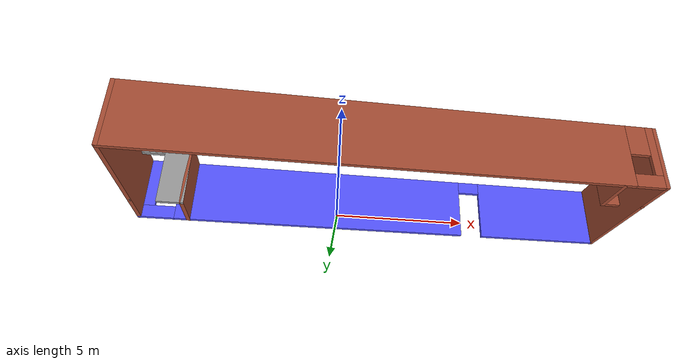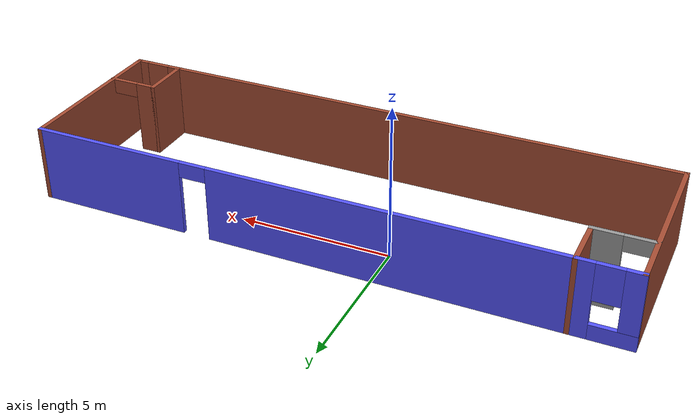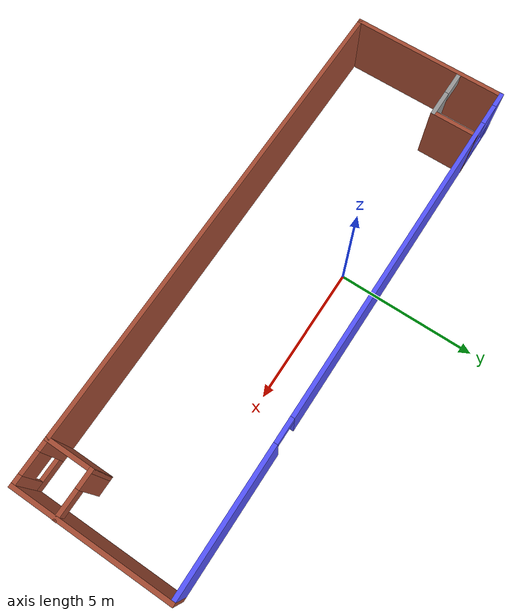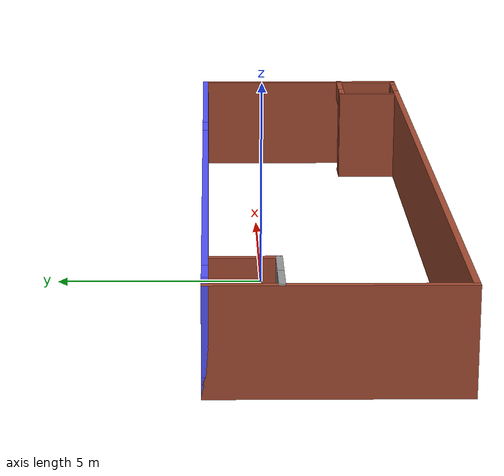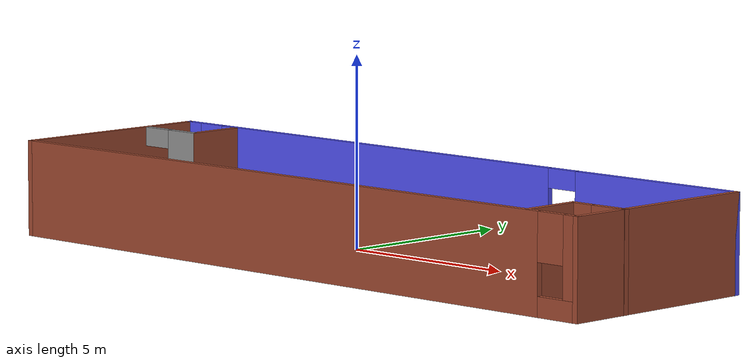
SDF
<?xml version='1.0'?>
<sdf version='1.6'>
  <model name='groundf'>
    <pose frame=''>1.85781 -1.43237 0 0 -0 0</pose>
    <link name='Wall_10'>
      <collision name='Wall_10_Collision'>
        <geometry>
          <box>
            <size>5.75 0.15 2.5</size>
          </box>
        </geometry>
        <pose frame=''>0 0 1.25 0 -0 0</pose>
      </collision>
      <visual name='Wall_10_Visual'>
        <pose frame=''>0 0 1.25 0 -0 0</pose>
        <geometry>
          <box>
            <size>5.75 0.15 2.5</size>
          </box>
        </geometry>
        <material>
          <script>
            <uri>file://media/materials/scripts/gazebo.material</uri>
            <name>Gazebo/Bricks</name>
          </script>
          <ambient>1 1 1 1</ambient>
        </material>
        <meta>
          <layer>0</layer>
        </meta>
      </visual>
      <pose frame=''>9.54507 -0.001994 0 0 -0 1.5708</pose>
    </link>
    <link name='Wall_11'>
      <pose frame=''>-0.004935 2.79801 0 0 -0 3.14159</pose>
      <visual name='Wall_11_Visual_0'>
        <pose frame=''>-7.03977 0 1.25 0 -0 0</pose>
        <geometry>
          <box>
            <size>5.17046 0.15 2.5</size>
          </box>
        </geometry>
        <material>
          <script>
            <uri>file://media/materials/scripts/gazebo.material</uri>
            <name>Gazebo/Grey</name>
          </script>
          <ambient>0.333333 0.333333 1 1</ambient>
        </material>
        <meta>
          <layer>0</layer>
        </meta>
      </visual>
      <collision name='Wall_11_Collision_0'>
        <geometry>
          <box>
            <size>5.17046 0.15 2.5</size>
          </box>
        </geometry>
        <pose frame=''>-7.03977 0 1.25 0 -0 0</pose>
      </collision>
      <visual name='Wall_11_Visual_1'>
        <pose frame=''>2.34668 0 1.25 0 -0 0</pose>
        <geometry>
          <box>
            <size>11.8024 0.15 2.5</size>
          </box>
        </geometry>
        <material>
          <script>
            <uri>file://media/materials/scripts/gazebo.material</uri>
            <name>Gazebo/Grey</name>
          </script>
          <ambient>0.333333 0.333333 1 1</ambient>
        </material>
        <meta>
          <layer>0</layer>
        </meta>
      </visual>
      <collision name='Wall_11_Collision_1'>
        <geometry>
          <box>
            <size>11.8024 0.15 2.5</size>
          </box>
        </geometry>
        <pose frame=''>2.34668 0 1.25 0 -0 0</pose>
      </collision>
      <visual name='Wall_11_Visual_2'>
        <pose frame=''>8.93645 0 0.25 0 -0 0</pose>
        <geometry>
          <box>
            <size>1.37709 0.15 0.5</size>
          </box>
        </geometry>
        <material>
          <script>
            <uri>file://media/materials/scripts/gazebo.material</uri>
            <name>Gazebo/Grey</name>
          </script>
          <ambient>0.333333 0.333333 1 1</ambient>
        </material>
        <meta>
          <layer>0</layer>
        </meta>
      </visual>
      <collision name='Wall_11_Collision_2'>
        <geometry>
          <box>
            <size>1.37709 0.15 0.5</size>
          </box>
        </geometry>
        <pose frame=''>8.93645 0 0.25 0 -0 0</pose>
      </collision>
      <visual name='Wall_11_Visual_3'>
        <pose frame=''>9.33645 0 1.5 0 -0 0</pose>
        <geometry>
          <box>
            <size>0.577093 0.15 2</size>
          </box>
        </geometry>
        <material>
          <script>
            <uri>file://media/materials/scripts/gazebo.material</uri>
            <name>Gazebo/Grey</name>
          </script>
          <ambient>0.333333 0.333333 1 1</ambient>
        </material>
        <meta>
          <layer>0</layer>
        </meta>
      </visual>
      <collision name='Wall_11_Collision_3'>
        <geometry>
          <box>
            <size>0.577093 0.15 2</size>
          </box>
        </geometry>
        <pose frame=''>9.33645 0 1.5 0 -0 0</pose>
      </collision>
      <visual name='Wall_11_Visual_4'>
        <pose frame=''>8.64791 0 1.9 0 -0 0</pose>
        <geometry>
          <box>
            <size>0.8 0.15 1.2</size>
          </box>
        </geometry>
        <material>
          <script>
            <uri>file://media/materials/scripts/gazebo.material</uri>
            <name>Gazebo/Grey</name>
          </script>
          <ambient>0.333333 0.333333 1 1</ambient>
        </material>
        <meta>
          <layer>0</layer>
        </meta>
      </visual>
      <collision name='Wall_11_Collision_4'>
        <geometry>
          <box>
            <size>0.8 0.15 1.2</size>
          </box>
        </geometry>
        <pose frame=''>8.64791 0 1.9 0 -0 0</pose>
      </collision>
      <visual name='Wall_11_Visual_5'>
        <pose frame=''>-4.00454 0 2.25 0 -0 0</pose>
        <geometry>
          <box>
            <size>0.9 0.15 0.5</size>
          </box>
        </geometry>
        <material>
          <script>
            <uri>file://media/materials/scripts/gazebo.material</uri>
            <name>Gazebo/Grey</name>
          </script>
          <ambient>0.333333 0.333333 1 1</ambient>
        </material>
        <meta>
          <layer>0</layer>
        </meta>
      </visual>
      <collision name='Wall_11_Collision_5'>
        <geometry>
          <box>
            <size>0.9 0.15 0.5</size>
          </box>
        </geometry>
        <pose frame=''>-4.00454 0 2.25 0 -0 0</pose>
      </collision>
    </link>
    <link name='Wall_13'>
      <pose frame=''>-8.62993 1.20199 0 0 -0 0</pose>
      <visual name='Wall_13_Visual_0'>
        <pose frame=''>-0.944629 0 1.25 0 -0 0</pose>
        <geometry>
          <box>
            <size>0.110743 0.15 2.5</size>
          </box>
        </geometry>
        <material>
          <script>
            <uri>file://media/materials/scripts/gazebo.material</uri>
            <name>Gazebo/Grey</name>
          </script>
          <ambient>1 1 1 1</ambient>
        </material>
        <meta>
          <layer>0</layer>
        </meta>
      </visual>
      <collision name='Wall_13_Collision_0'>
        <geometry>
          <box>
            <size>0.110743 0.15 2.5</size>
          </box>
        </geometry>
        <pose frame=''>-0.944629 0 1.25 0 -0 0</pose>
      </collision>
      <visual name='Wall_13_Visual_1'>
        <pose frame=''>0.505371 0 1.25 0 -0 0</pose>
        <geometry>
          <box>
            <size>0.989257 0.15 2.5</size>
          </box>
        </geometry>
        <material>
          <script>
            <uri>file://media/materials/scripts/gazebo.material</uri>
            <name>Gazebo/Grey</name>
          </script>
          <ambient>1 1 1 1</ambient>
        </material>
        <meta>
          <layer>0</layer>
        </meta>
      </visual>
      <collision name='Wall_13_Collision_1'>
        <geometry>
          <box>
            <size>0.989257 0.15 2.5</size>
          </box>
        </geometry>
        <pose frame=''>0.505371 0 1.25 0 -0 0</pose>
      </collision>
      <visual name='Wall_13_Visual_2'>
        <pose frame=''>-0.439257 0 2.25 0 -0 0</pose>
        <geometry>
          <box>
            <size>0.9 0.15 0.5</size>
          </box>
        </geometry>
        <material>
          <script>
            <uri>file://media/materials/scripts/gazebo.material</uri>
            <name>Gazebo/Grey</name>
          </script>
          <ambient>1 1 1 1</ambient>
        </material>
        <meta>
          <layer>0</layer>
        </meta>
      </visual>
      <collision name='Wall_13_Collision_2'>
        <geometry>
          <box>
            <size>0.9 0.15 0.5</size>
          </box>
        </geometry>
        <pose frame=''>-0.439257 0 2.25 0 -0 0</pose>
      </collision>
    </link>
    <link name='Wall_14'>
      <collision name='Wall_14_Collision'>
        <geometry>
          <box>
            <size>1.75 0.15 2.5</size>
          </box>
        </geometry>
        <pose frame=''>0 0 1.25 0 -0 0</pose>
      </collision>
      <visual name='Wall_14_Visual'>
        <pose frame=''>0 0 1.25 0 -0 0</pose>
        <geometry>
          <box>
            <size>1.75 0.15 2.5</size>
          </box>
        </geometry>
        <material>
          <script>
            <uri>file://media/materials/scripts/gazebo.material</uri>
            <name>Gazebo/Bricks</name>
          </script>
          <ambient>1 1 1 1</ambient>
        </material>
        <meta>
          <layer>0</layer>
        </meta>
      </visual>
      <pose frame=''>-7.70493 2.00199 0 0 -0 1.5708</pose>
    </link>
    <link name='Wall_16'>
      <collision name='Wall_16_Collision'>
        <geometry>
          <box>
            <size>1.75 0.15 2.5</size>
          </box>
        </geometry>
        <pose frame=''>0 0 1.25 0 -0 0</pose>
      </collision>
      <visual name='Wall_16_Visual'>
        <pose frame=''>0 0 1.25 0 -0 0</pose>
        <geometry>
          <box>
            <size>1.75 0.15 2.5</size>
          </box>
        </geometry>
        <material>
          <script>
            <uri>file://media/materials/scripts/gazebo.material</uri>
            <name>Gazebo/Bricks</name>
          </script>
          <ambient>1 1 1 1</ambient>
        </material>
        <meta>
          <layer>0</layer>
        </meta>
      </visual>
      <pose frame=''>7.95493 -1.9996 0 0 -0 1.5708</pose>
    </link>
    <link name='Wall_17'>
      <pose frame=''>8.75493 -1.1996 0 0 -0 0</pose>
      <visual name='Wall_17_Visual_0'>
        <pose frame=''>-0.518931 0 1.25 0 -0 0</pose>
        <geometry>
          <box>
            <size>0.712139 0.15 2.5</size>
          </box>
        </geometry>
        <material>
          <script>
            <uri>file://media/materials/scripts/gazebo.material</uri>
            <name>Gazebo/Bricks</name>
          </script>
          <ambient>1 1 1 1</ambient>
        </material>
        <meta>
          <layer>0</layer>
        </meta>
      </visual>
      <collision name='Wall_17_Collision_0'>
        <geometry>
          <box>
            <size>0.712139 0.15 2.5</size>
          </box>
        </geometry>
        <pose frame=''>-0.518931 0 1.25 0 -0 0</pose>
      </collision>
      <visual name='Wall_17_Visual_1'>
        <pose frame=''>0.806069 0 1.25 0 -0 0</pose>
        <geometry>
          <box>
            <size>0.137861 0.15 2.5</size>
          </box>
        </geometry>
        <material>
          <script>
            <uri>file://media/materials/scripts/gazebo.material</uri>
            <name>Gazebo/Bricks</name>
          </script>
          <ambient>1 1 1 1</ambient>
        </material>
        <meta>
          <layer>0</layer>
        </meta>
      </visual>
      <collision name='Wall_17_Collision_1'>
        <geometry>
          <box>
            <size>0.137861 0.15 2.5</size>
          </box>
        </geometry>
        <pose frame=''>0.806069 0 1.25 0 -0 0</pose>
      </collision>
      <visual name='Wall_17_Visual_2'>
        <pose frame=''>0.287139 0 2.25 0 -0 0</pose>
        <geometry>
          <box>
            <size>0.9 0.15 0.5</size>
          </box>
        </geometry>
        <material>
          <script>
            <uri>file://media/materials/scripts/gazebo.material</uri>
            <name>Gazebo/Bricks</name>
          </script>
          <ambient>1 1 1 1</ambient>
        </material>
        <meta>
          <layer>0</layer>
        </meta>
      </visual>
      <collision name='Wall_17_Collision_2'>
        <geometry>
          <box>
            <size>0.9 0.15 0.5</size>
          </box>
        </geometry>
        <pose frame=''>0.287139 0 2.25 0 -0 0</pose>
      </collision>
    </link>
    <link name='Wall_8'>
      <collision name='Wall_8_Collision'>
        <geometry>
          <box>
            <size>5.75 0.15 2.5</size>
          </box>
        </geometry>
        <pose frame=''>0 0 1.25 0 -0 0</pose>
      </collision>
      <visual name='Wall_8_Visual'>
        <pose frame=''>0 0 1.25 0 -0 0</pose>
        <geometry>
          <box>
            <size>5.75 0.15 2.5</size>
          </box>
        </geometry>
        <material>
          <script>
            <uri>file://media/materials/scripts/gazebo.material</uri>
            <name>Gazebo/Bricks</name>
          </script>
          <ambient>1 1 1 1</ambient>
        </material>
        <meta>
          <layer>0</layer>
        </meta>
      </visual>
      <pose frame=''>-9.55494 -0.001994 0 0 0 -1.5708</pose>
    </link>
    <link name='Wall_9'>
      <pose frame=''>-0.004935 -2.80199 0 0 -0 0</pose>
      <visual name='Wall_9_Visual_0'>
        <pose frame=''>-0.62778 0 1.25 0 -0 0</pose>
        <geometry>
          <box>
            <size>17.9944 0.15 2.5</size>
          </box>
        </geometry>
        <material>
          <script>
            <uri>file://media/materials/scripts/gazebo.material</uri>
            <name>Gazebo/Bricks</name>
          </script>
          <ambient>1 1 1 1</ambient>
        </material>
        <meta>
          <layer>0</layer>
        </meta>
      </visual>
      <collision name='Wall_9_Collision_0'>
        <geometry>
          <box>
            <size>17.9944 0.15 2.5</size>
          </box>
        </geometry>
        <pose frame=''>-0.62778 0 1.25 0 -0 0</pose>
      </collision>
      <visual name='Wall_9_Visual_1'>
        <pose frame=''>8.99722 0 0.25 0 -0 0</pose>
        <geometry>
          <box>
            <size>1.25556 0.15 0.5</size>
          </box>
        </geometry>
        <material>
          <script>
            <uri>file://media/materials/scripts/gazebo.material</uri>
            <name>Gazebo/Bricks</name>
          </script>
          <ambient>1 1 1 1</ambient>
        </material>
        <meta>
          <layer>0</layer>
        </meta>
      </visual>
      <collision name='Wall_9_Collision_1'>
        <geometry>
          <box>
            <size>1.25556 0.15 0.5</size>
          </box>
        </geometry>
        <pose frame=''>8.99722 0 0.25 0 -0 0</pose>
      </collision>
      <visual name='Wall_9_Visual_2'>
        <pose frame=''>9.39722 0 1.5 0 -0 0</pose>
        <geometry>
          <box>
            <size>0.455559 0.15 2</size>
          </box>
        </geometry>
        <material>
          <script>
            <uri>file://media/materials/scripts/gazebo.material</uri>
            <name>Gazebo/Bricks</name>
          </script>
          <ambient>1 1 1 1</ambient>
        </material>
        <meta>
          <layer>0</layer>
        </meta>
      </visual>
      <collision name='Wall_9_Collision_2'>
        <geometry>
          <box>
            <size>0.455559 0.15 2</size>
          </box>
        </geometry>
        <pose frame=''>9.39722 0 1.5 0 -0 0</pose>
      </collision>
      <visual name='Wall_9_Visual_3'>
        <pose frame=''>8.76944 0 1.9 0 -0 0</pose>
        <geometry>
          <box>
            <size>0.8 0.15 1.2</size>
          </box>
        </geometry>
        <material>
          <script>
            <uri>file://media/materials/scripts/gazebo.material</uri>
            <name>Gazebo/Bricks</name>
          </script>
          <ambient>1 1 1 1</ambient>
        </material>
        <meta>
          <layer>0</layer>
        </meta>
      </visual>
      <collision name='Wall_9_Collision_3'>
        <geometry>
          <box>
            <size>0.8 0.15 1.2</size>
          </box>
        </geometry>
        <pose frame=''>8.76944 0 1.9 0 -0 0</pose>
      </collision>
    </link>
    <static>1</static>
  </model>
</sdf>
